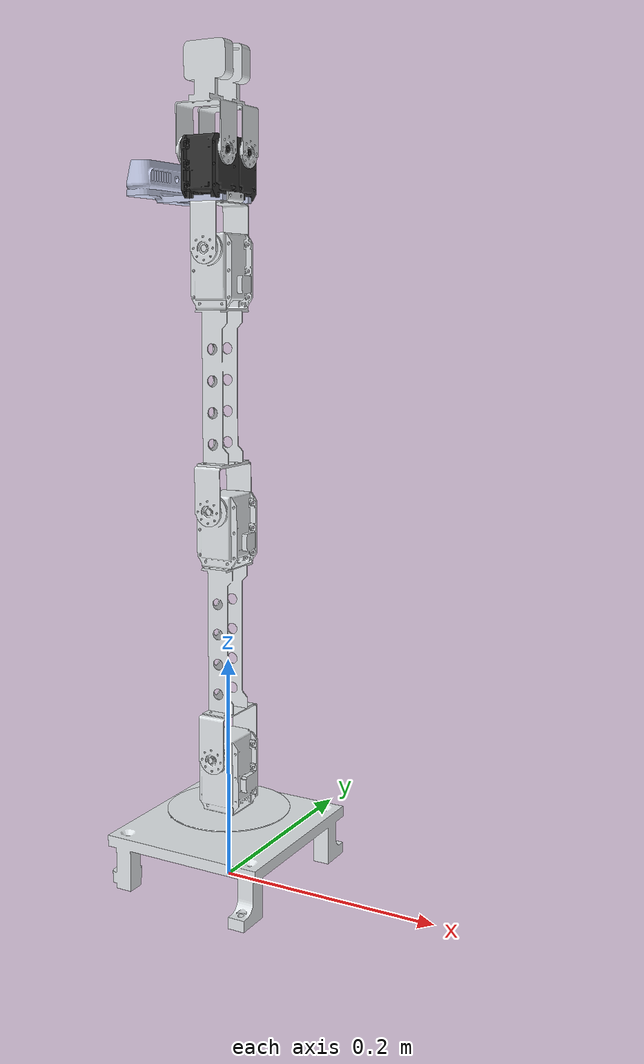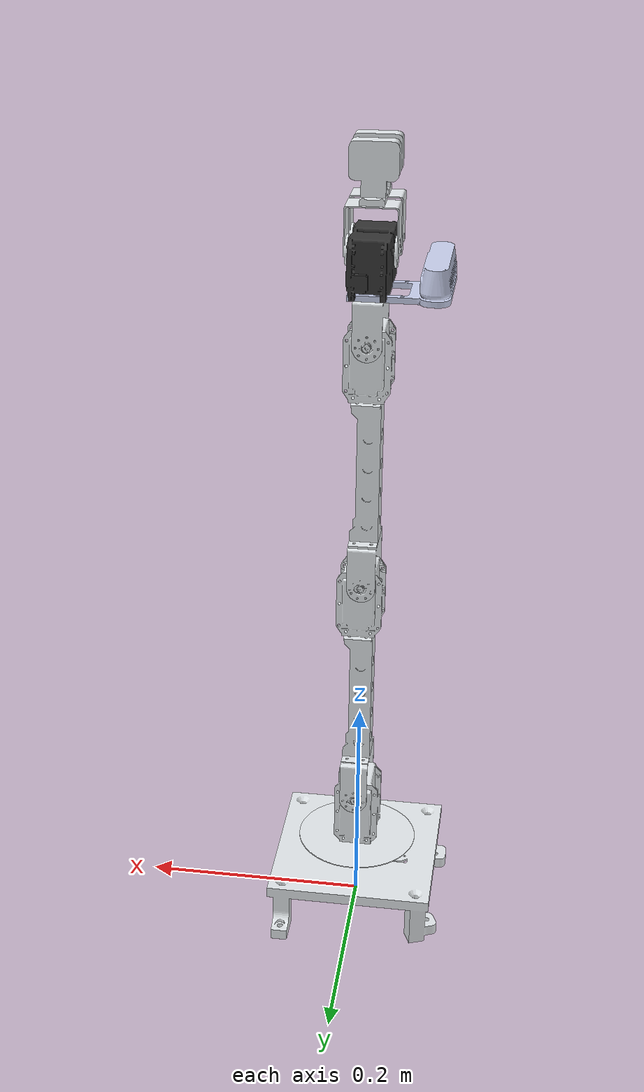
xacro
<?xml version="1.0"?>
<robot xmlns:xacro="http://www.ros.org/wiki/xacro" name="crust_arm_mobile">
    <xacro:arg name="initial_positions_file" default="initial_positions.yaml" />

    <!-- Import panda urdf file -->
    <xacro:include filename="$(find crust_arm_description)/urdf/crust_arm_mobile_w_gripper.urdf.xacro" />

    <!-- Import panda ros2_control description -->
    <xacro:include filename="crust_gripper.ros2_control.xacro" />

    <xacro:crust_ros2_control name="CrustSystem" />
</robot>

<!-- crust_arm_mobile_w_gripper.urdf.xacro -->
<robot
  name="crust_arm_mobile">
  <link
    name="crust_base_link">
    <inertial>
      <origin
        xyz="-0.0011371 0.00077543 0.04167"
        rpy="0 0 0" />
      <mass
        value="0.70106" />
      <inertia
        ixx="0.0013838"
        ixy="5.5315E-08"
        ixz="-1.7418E-06"
        iyy="0.0011971"
        iyz="-9.596E-08"
        izz="0.0025267" />
    </inertial>
    <visual>
      <origin
        xyz="0 0 0"
        rpy="0 0 0" />
      <geometry>
        <mesh
          filename="file://$(find crust_arm_description)/meshes_gripper/base_link.STL" />
      </geometry>
      <material
        name="">
        <color
          rgba="0.89804 0.91765 0.92941 1" />
      </material>
    </visual>
    <collision>
      <origin
        xyz="0 0 0"
        rpy="0 0 0" />
      <geometry>
        <mesh
          filename="file://$(find crust_arm_description)/meshes_gripper/base_link.STL" />
      </geometry>
    </collision>
  </link>
  <link
    name="link_1">
    <inertial>
      <origin
        xyz="2.7088E-06 -0.00034362 0.032412"
        rpy="0 0 0" />
      <mass
        value="0.1159" />
      <inertia
        ixx="6.1382E-05"
        ixy="-2.3112E-09"
        ixz="-1.6418E-09"
        iyy="5.2378E-05"
        iyz="1.0628E-06"
        izz="6.273E-05" />
    </inertial>
    <visual>
      <origin
        xyz="0 0 0"
        rpy="0 0 0" />
      <geometry>
        <mesh
          filename="file://$(find crust_arm_description)/meshes_gripper/link_1.STL" />
      </geometry>
      <material
        name="">
        <color
          rgba="0.89804 0.91765 0.92941 1" />
      </material>
    </visual>
    <collision>
      <origin
        xyz="0 0 0"
        rpy="0 0 0" />
      <geometry>
        <mesh
          filename="file://$(find crust_arm_description)/meshes_gripper/link_1.STL" />
      </geometry>
    </collision>
  </link>
  <joint
    name="joint_1"
    type="revolute">
    <origin
      xyz="0 0 0.059"
      rpy="0 0 0" />
    <parent
      link="crust_base_link" />
    <child
      link="link_1" />
    <axis
      xyz="0 0 1" />
    <limit
      lower="-2.2"
      upper="2.2"
      effort="200"
      velocity="3" />
  </joint>
  <link
    name="link_2">
    <inertial>
      <origin
        xyz="-0.000963145876619109 -0.161378299147481 -0.000284331859152033"
        rpy="0 0 0" />
      <mass
        value="0.115162829413528" />
      <inertia
        ixx="8.19607421534774E-05"
        ixy="-1.52641760422517E-08"
        ixz="4.13979918627638E-13"
        iyy="2.83238373910903E-05"
        iyz="-8.80590794460533E-07"
        izz="7.03346423289087E-05" />
    </inertial>
    <visual>
      <origin
        xyz="0 0 0"
        rpy="0 0 0" />
      <geometry>
        <mesh
          filename="file://$(find crust_arm_description)/meshes_gripper/link_2.STL" />
      </geometry>
      <material
        name="">
        <color
          rgba="0.898039215686275 0.917647058823529 0.929411764705882 1" />
      </material>
    </visual>
    <collision>
      <origin
        xyz="0 0 0"
        rpy="0 0 0" />
      <geometry>
        <mesh
          filename="file://$(find crust_arm_description)/meshes_gripper/link_2.STL" />
      </geometry>
    </collision>
  </link>
  <joint
    name="joint_2"
    type="revolute">
    <origin
      xyz="0 -0.00315 0.0576"
      rpy="-1.5708 0 0" />
    <parent
      link="link_1" />
    <child
      link="link_2" />
    <axis
      xyz="0 0 1" />
    <limit
      lower="-2.2"
      upper="2.2"
      effort="200"
      velocity="3" />
  </joint>
  <link
    name="link_3">
    <inertial>
      <origin
        xyz="-0.00094318 -0.15971 -0.00027844"
        rpy="0 0 0" />
      <mass
        value="0.1176" />
      <inertia
        ixx="8.1432E-05"
        ixy="-1.5264E-08"
        ixz="4.1398E-13"
        iyy="2.7973E-05"
        iyz="-8.8059E-07"
        izz="7.0409E-05" />
    </inertial>
    <visual>
      <origin
        xyz="0 0 0"
        rpy="0 0 0" />
      <geometry>
        <mesh
          filename="file://$(find crust_arm_description)/meshes_gripper/link_3.STL" />
      </geometry>
      <material
        name="">
        <color
          rgba="0.89804 0.91765 0.92941 1" />
      </material>
    </visual>
    <collision>
      <origin
        xyz="0 0 0"
        rpy="0 0 0" />
      <geometry>
        <mesh
          filename="file://$(find crust_arm_description)/meshes_gripper/link_3.STL" />
      </geometry>
    </collision>
  </link>
  <joint
    name="joint_3"
    type="revolute">
    <origin
      xyz="0 -0.2198 -0.003"
      rpy="0 0 0" />
    <parent
      link="link_2" />
    <child
      link="link_3" />
    <axis
      xyz="0 0 1" />
    <limit
      lower="-2.2"
      upper="2.2"
      effort="200"
      velocity="3" />
  </joint>
  <link
    name="link_4">
    <inertial>
      <origin
        xyz="-5.2458E-15 -0.017324 -4.8711E-15"
        rpy="0 0 0" />
      <mass
        value="0.012733" />
      <inertia
        ixx="5.3648E-06"
        ixy="-6.1775E-22"
        ixz="3.5043E-21"
        iyy="4.553E-06"
        iyz="9.8621E-21"
        izz="2.0871E-06" />
    </inertial>
    <visual>
      <origin
        xyz="0 0 0"
        rpy="0 0 0" />
      <geometry>
        <mesh
          filename="file://$(find crust_arm_description)/meshes_gripper/link_4.STL" />
      </geometry>
      <material
        name="">
        <color
          rgba="0.89804 0.91765 0.92941 1" />
      </material>
    </visual>
    <collision>
      <origin
        xyz="0 0 0"
        rpy="0 0 0" />
      <geometry>
        <mesh
          filename="file://$(find crust_arm_description)/meshes_gripper/link_4.STL" />
      </geometry>
    </collision>
  </link>
  <joint
    name="joint_4"
    type="revolute">
    <origin
      xyz="0 -0.2208 -0.003"
      rpy="0 0 0" />
    <parent
      link="link_3" />
    <child
      link="link_4" />
    <axis
      xyz="0 0 1" />
    <limit
      lower="-2.2"
      upper="2.2"
      effort="200"
      velocity="3" />
  </joint>
  <link
    name="flange_link">
    <inertial>
      <origin
        xyz="0.0017146 -6.5642E-15 -3.0531E-16"
        rpy="0 0 0" />
      <mass
        value="0.0029645" />
      <inertia
        ixx="5.4073E-07"
        ixy="1.0659E-22"
        ixz="1.8551E-22"
        iyy="4.0167E-07"
        iyz="5.1627E-22"
        izz="1.6602E-07" />
    </inertial>
    <visual>
      <origin
        xyz="0 0 0"
        rpy="0 0 0" />
      <geometry>
        <mesh
          filename="file://$(find crust_arm_description)/meshes_gripper/flange_link.STL" />
      </geometry>
      <material
        name="">
        <color
          rgba="0.89804 0.91765 0.92941 1" />
      </material>
    </visual>
    <collision>
      <origin
        xyz="0 0 0"
        rpy="0 0 0" />
      <geometry>
        <mesh
          filename="file://$(find crust_arm_description)/meshes_gripper/flange_link.STL" />
      </geometry>
    </collision>
  </link>
  <joint
    name="flange_joint"
    type="fixed">
    <origin
      xyz="0 -0.0385 0"
      rpy="1.5708 0 -1.5708" />
    <parent
      link="link_4" />
    <child
      link="flange_link" />
    <axis
      xyz="0 0 0" />
  </joint>
  <link
    name="camera_link">
    <inertial>
      <origin
        xyz="-0.0094472 -0.017953 -0.0015914"
        rpy="0 0 0" />
      <mass
        value="0.12525" />
      <inertia
        ixx="8.5958E-05"
        ixy="-1.7858E-08"
        ixz="-5.2292E-07"
        iyy="1.3969E-05"
        iyz="2.3752E-10"
        izz="7.897E-05" />
    </inertial>
    <visual>
      <origin
        xyz="0 0 0"
        rpy="0 0 0" />
      <geometry>
        <mesh
          filename="file://$(find crust_arm_description)/meshes_gripper/camera_link.STL" />
      </geometry>
      <material
        name="">
        <color
          rgba="0.79216 0.81961 0.93333 1" />
      </material>
    </visual>
    <collision>
      <origin
        xyz="0 0 0"
        rpy="0 0 0" />
      <geometry>
        <mesh
          filename="file://$(find crust_arm_description)/meshes_gripper/camera_link.STL" />
      </geometry>
    </collision>
  </link>
  <joint
    name="camera_joint"
    type="fixed">
    <origin
      xyz="0.0288 0.017962 0.055"
      rpy="0 0 0" />
    <parent
      link="flange_link" />
    <child
      link="camera_link" />
    <axis
      xyz="0 0 0" />
  </joint>
  <link
    name="tool_link">
    </link>
  <joint
    name="tool_joint"
    type="fixed">
    <origin
      xyz="0.12831 0 0"
      rpy="0 0 0" />
    <parent
      link="flange_link" />
    <child
      link="tool_link" />
    <axis
      xyz="0 0 0" />
  </joint>

  <link
    name="gripper_link">
    <inertial>
      <origin
        xyz="0.029256 4.8004E-09 -3.0878E-05"
        rpy="0 0 0" />
      <mass
        value="0.089066" />
      <inertia
        ixx="1.5005E-05"
        ixy="-5.9945E-13"
        ixz="-3.6548E-07"
        iyy="2.4693E-05"
        iyz="-1.0592E-11"
        izz="2.1002E-05" />
    </inertial>
    <visual>
      <origin
        xyz="0 0 0"
        rpy="0 0 0" />
      <geometry>
        <mesh
          filename="file://$(find crust_arm_description)/meshes_gripper/gripper_link.STL" />
      </geometry>
      <material
        name="">
        <color
          rgba="0.20784 0.20784 0.20784 1" />
      </material>
    </visual>
    <collision>
      <origin
        xyz="0 0 0"
        rpy="0 0 0" />
      <geometry>
        <mesh
          filename="file://$(find crust_arm_description)/meshes_gripper/gripper_link.STL" />
      </geometry>
    </collision>
  </link>
  <joint
    name="gripper_joint"
    type="fixed">
    <origin
      xyz="0 0 0"
      rpy="0 0 0" />
    <parent
      link="flange_link" />
    <child
      link="gripper_link" />
    <axis
      xyz="0 0 0" />
  </joint>
  <link
    name="finger1_link">
    <inertial>
      <origin
        xyz="0.00064145 -0.040478 -3.636E-15"
        rpy="0 0 0" />
      <mass
        value="0.024008" />
      <inertia
        ixx="8.2624E-06"
        ixy="1.6564E-07"
        ixz="-1.6873E-23"
        iyy="4.9212E-06"
        iyz="-2.1007E-20"
        izz="4.8948E-06" />
    </inertial>
    <visual>
      <origin
        xyz="0 0 0"
        rpy="0 0 0" />
      <geometry>
        <mesh
          filename="file://$(find crust_arm_description)/meshes_gripper/finger1_link.STL" />
      </geometry>
      <material
        name="">
        <color
          rgba="0.89804 0.91765 0.92941 1" />
      </material>
    </visual>
    <collision>
      <origin
        xyz="0 0 0"
        rpy="0 0 0" />
      <geometry>
        <mesh
          filename="file://$(find crust_arm_description)/meshes_gripper/finger1_link.STL" />
      </geometry>
    </collision>
  </link>
  <joint
    name="finger1_joint"
    type="revolute">
    <origin
      xyz="0.0408 0.017 0.001675"
      rpy="3.1416 0 -1.5708" />
    <parent
      link="gripper_link" />
    <child
      link="finger1_link" />
    <axis
      xyz="0 0 1" />
    <limit
      lower="-2.2"
      upper="2.2"
      effort="200"
      velocity="3" />
  </joint>
  <link
    name="finger2_link">
    <inertial>
      <origin
        xyz="0.00064145 -0.040478 4.0662E-15"
        rpy="0 0 0" />
      <mass
        value="0.024008" />
      <inertia
        ixx="8.2624E-06"
        ixy="1.6564E-07"
        ixz="-1.6782E-21"
        iyy="4.9212E-06"
        iyz="-1.0035E-20"
        izz="4.8948E-06" />
    </inertial>
    <visual>
      <origin
        xyz="0 0 0"
        rpy="0 0 0" />
      <geometry>
        <mesh
          filename="file://$(find crust_arm_description)/meshes_gripper/finger2_link.STL" />
      </geometry>
      <material
        name="">
        <color
          rgba="0.89804 0.91765 0.92941 1" />
      </material>
    </visual>
    <collision>
      <origin
        xyz="0 0 0"
        rpy="0 0 0" />
      <geometry>
        <mesh
          filename="file://$(find crust_arm_description)/meshes_gripper/finger2_link.STL" />
      </geometry>
    </collision>
  </link>
  <joint
    name="finger2_joint"
    type="revolute">
    <origin
      xyz="0.0408 -0.017 0.001675"
      rpy="0 0 1.5708" />
    <parent
      link="gripper_link" />
    <child
      link="finger2_link" />
    <axis
      xyz="0 0 1" />
    <limit
      lower="-2.2"
      upper="2.2"
      effort="200"
      velocity="3" />
  </joint>
</robot>
